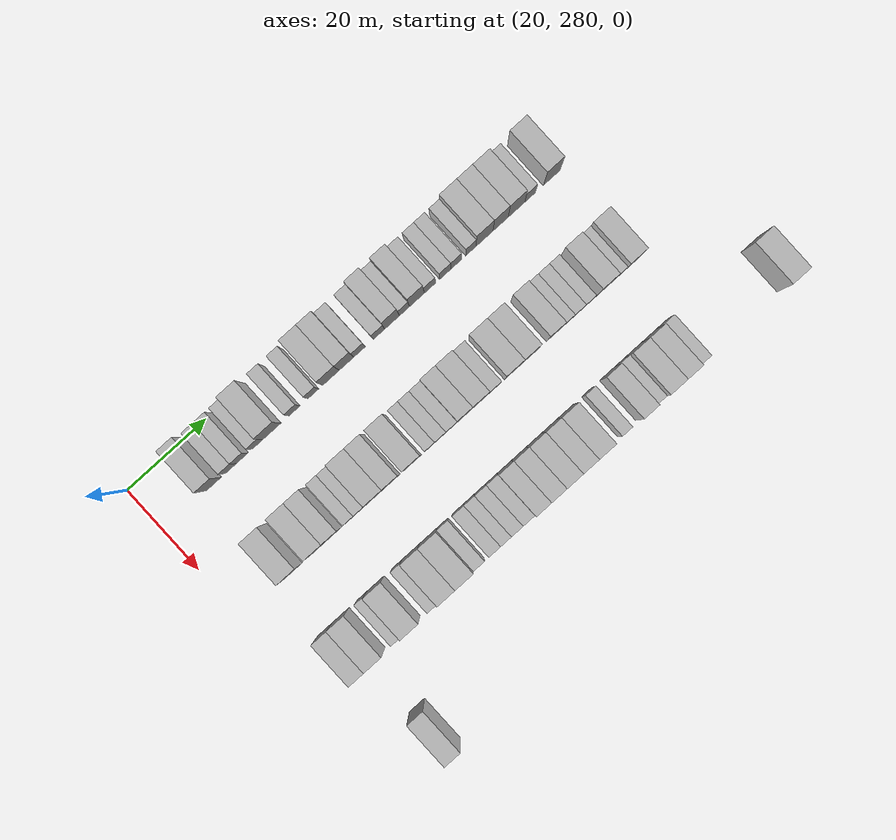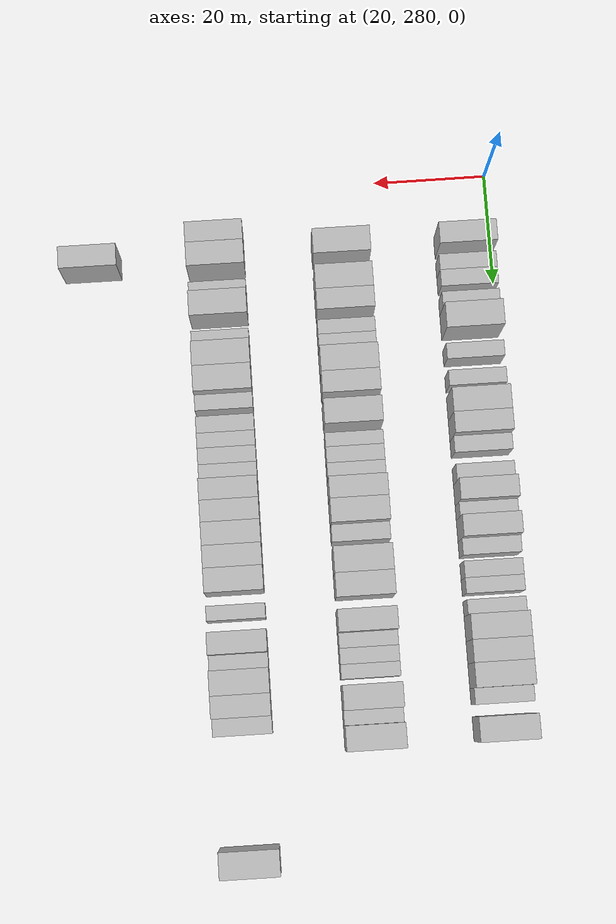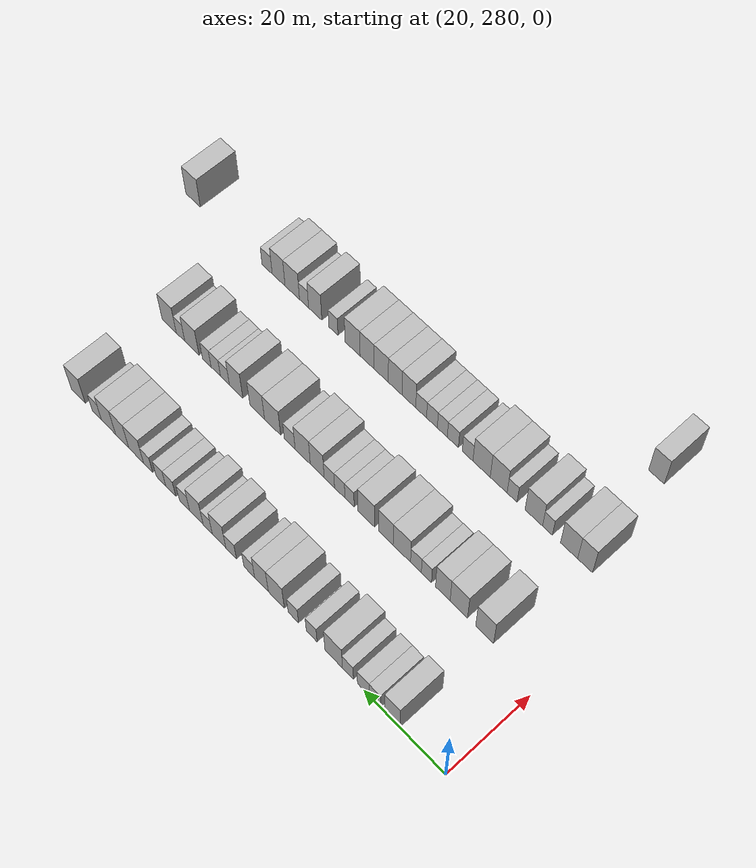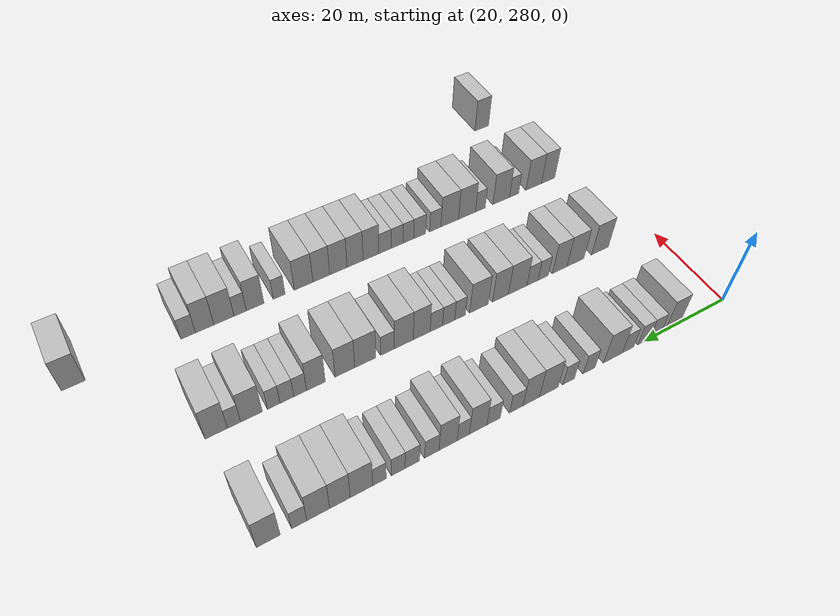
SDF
<sdf version="1.6">
 <world name="default">
  <model name="building_171">
   <static>1</static>
   <pose>25.0000 292.9441 0 0.000000 0.000000 0.000000</pose>
   <link name="link">
    <pose>0 0 4.50 0 0 0</pose>
    <collision name="collision"><geometry><box><size>10.0000 3.7758 9.0000</size></box></geometry></collision>
    <visual name="visual">
     <cast_shadows>0</cast_shadows>
     <geometry><box><size>10.0000 3.7758 9.0000</size></box></geometry>
     <material>
      <script>
       <uri>model://HANNAS_wall/materials/scripts</uri>
       <uri>model://HANNAS_wall/materials/textures</uri>
       <name>vrc/HANNAS_wall</name>
      </script>
     </material>
    </visual>
   </link>
  </model>
  <model name="building_172">
   <static>1</static>
   <pose>25.0000 297.2373 0 0.000000 0.000000 0.000000</pose>
   <link name="link">
    <pose>0 0 3.00 0 0 0</pose>
    <collision name="collision"><geometry><box><size>10.0000 2.8105 6.0000</size></box></geometry></collision>
    <visual name="visual">
     <cast_shadows>0</cast_shadows>
     <geometry><box><size>10.0000 2.8105 6.0000</size></box></geometry>
     <material>
      <script>
       <uri>model://HANNAS_wall/materials/scripts</uri>
       <uri>model://HANNAS_wall/materials/textures</uri>
       <name>vrc/HANNAS_wall</name>
      </script>
     </material>
    </visual>
   </link>
  </model>
  <model name="building_173">
   <static>1</static>
   <pose>25.0000 300.1265 0 0.000000 0.000000 0.000000</pose>
   <link name="link">
    <pose>0 0 3.00 0 0 0</pose>
    <collision name="collision"><geometry><box><size>10.0000 2.9680 6.0000</size></box></geometry></collision>
    <visual name="visual">
     <cast_shadows>0</cast_shadows>
     <geometry><box><size>10.0000 2.9680 6.0000</size></box></geometry>
     <material>
      <script>
       <uri>model://HANNAS_wall/materials/scripts</uri>
       <uri>model://HANNAS_wall/materials/textures</uri>
       <name>vrc/HANNAS_wall</name>
      </script>
     </material>
    </visual>
   </link>
  </model>
  <model name="building_174">
   <static>1</static>
   <pose>25.0000 303.9963 0 0.000000 0.000000 0.000000</pose>
   <link name="link">
    <pose>0 0 3.00 0 0 0</pose>
    <collision name="collision"><geometry><box><size>10.0000 2.7715 6.0000</size></box></geometry></collision>
    <visual name="visual">
     <cast_shadows>0</cast_shadows>
     <geometry><box><size>10.0000 2.7715 6.0000</size></box></geometry>
     <material>
      <script>
       <uri>model://HANNAS_wall/materials/scripts</uri>
       <uri>model://HANNAS_wall/materials/textures</uri>
       <name>vrc/HANNAS_wall</name>
      </script>
     </material>
    </visual>
   </link>
  </model>
  <model name="building_175">
   <static>1</static>
   <pose>25.0000 307.6136 0 0.000000 0.000000 0.000000</pose>
   <link name="link">
    <pose>0 0 4.50 0 0 0</pose>
    <collision name="collision"><geometry><box><size>10.0000 4.4632 9.0000</size></box></geometry></collision>
    <visual name="visual">
     <cast_shadows>0</cast_shadows>
     <geometry><box><size>10.0000 4.4632 9.0000</size></box></geometry>
     <material>
      <script>
       <uri>model://HANNAS_wall/materials/scripts</uri>
       <uri>model://HANNAS_wall/materials/textures</uri>
       <name>vrc/HANNAS_wall</name>
      </script>
     </material>
    </visual>
   </link>
  </model>
  <model name="building_176">
   <static>1</static>
   <pose>25.0000 313.2385 0 0.000000 0.000000 0.000000</pose>
   <link name="link">
    <pose>0 0 3.00 0 0 0</pose>
    <collision name="collision"><geometry><box><size>10.0000 2.7866 6.0000</size></box></geometry></collision>
    <visual name="visual">
     <cast_shadows>0</cast_shadows>
     <geometry><box><size>10.0000 2.7866 6.0000</size></box></geometry>
     <material>
      <script>
       <uri>model://HANNAS_wall/materials/scripts</uri>
       <uri>model://HANNAS_wall/materials/textures</uri>
       <name>vrc/HANNAS_wall</name>
      </script>
     </material>
    </visual>
   </link>
  </model>
  <model name="building_177">
   <static>1</static>
   <pose>25.0000 317.9877 0 0.000000 0.000000 0.000000</pose>
   <link name="link">
    <pose>0 0 3.00 0 0 0</pose>
    <collision name="collision"><geometry><box><size>10.0000 2.7118 6.0000</size></box></geometry></collision>
    <visual name="visual">
     <cast_shadows>0</cast_shadows>
     <geometry><box><size>10.0000 2.7118 6.0000</size></box></geometry>
     <material>
      <script>
       <uri>model://HANNAS_wall/materials/scripts</uri>
       <uri>model://HANNAS_wall/materials/textures</uri>
       <name>vrc/HANNAS_wall</name>
      </script>
     </material>
    </visual>
   </link>
  </model>
  <model name="building_178">
   <static>1</static>
   <pose>25.0000 322.4462 0 0.000000 0.000000 0.000000</pose>
   <link name="link">
    <pose>0 0 4.50 0 0 0</pose>
    <collision name="collision"><geometry><box><size>10.0000 4.2054 9.0000</size></box></geometry></collision>
    <visual name="visual">
     <cast_shadows>0</cast_shadows>
     <geometry><box><size>10.0000 4.2054 9.0000</size></box></geometry>
     <material>
      <script>
       <uri>model://HANNAS_wall/materials/scripts</uri>
       <uri>model://HANNAS_wall/materials/textures</uri>
       <name>vrc/HANNAS_wall</name>
      </script>
     </material>
    </visual>
   </link>
  </model>
  <model name="building_179">
   <static>1</static>
   <pose>25.0000 326.3733 0 0.000000 0.000000 0.000000</pose>
   <link name="link">
    <pose>0 0 4.50 0 0 0</pose>
    <collision name="collision"><geometry><box><size>10.0000 3.6488 9.0000</size></box></geometry></collision>
    <visual name="visual">
     <cast_shadows>0</cast_shadows>
     <geometry><box><size>10.0000 3.6488 9.0000</size></box></geometry>
     <material>
      <script>
       <uri>model://HANNAS_wall/materials/scripts</uri>
       <uri>model://HANNAS_wall/materials/textures</uri>
       <name>vrc/HANNAS_wall</name>
      </script>
     </material>
    </visual>
   </link>
  </model>
  <model name="building_180">
   <static>1</static>
   <pose>25.0000 329.6420 0 0.000000 0.000000 0.000000</pose>
   <link name="link">
    <pose>0 0 3.00 0 0 0</pose>
    <collision name="collision"><geometry><box><size>10.0000 2.8886 6.0000</size></box></geometry></collision>
    <visual name="visual">
     <cast_shadows>0</cast_shadows>
     <geometry><box><size>10.0000 2.8886 6.0000</size></box></geometry>
     <material>
      <script>
       <uri>model://HANNAS_wall/materials/scripts</uri>
       <uri>model://HANNAS_wall/materials/textures</uri>
       <name>vrc/HANNAS_wall</name>
      </script>
     </material>
    </visual>
   </link>
  </model>
  <model name="building_181">
   <static>1</static>
   <pose>25.0000 334.5203 0 0.000000 0.000000 0.000000</pose>
   <link name="link">
    <pose>0 0 3.00 0 0 0</pose>
    <collision name="collision"><geometry><box><size>10.0000 2.8680 6.0000</size></box></geometry></collision>
    <visual name="visual">
     <cast_shadows>0</cast_shadows>
     <geometry><box><size>10.0000 2.8680 6.0000</size></box></geometry>
     <material>
      <script>
       <uri>model://HANNAS_wall/materials/scripts</uri>
       <uri>model://HANNAS_wall/materials/textures</uri>
       <name>vrc/HANNAS_wall</name>
      </script>
     </material>
    </visual>
   </link>
  </model>
  <model name="building_182">
   <static>1</static>
   <pose>25.0000 337.7992 0 0.000000 0.000000 0.000000</pose>
   <link name="link">
    <pose>0 0 4.50 0 0 0</pose>
    <collision name="collision"><geometry><box><size>10.0000 3.6898 9.0000</size></box></geometry></collision>
    <visual name="visual">
     <cast_shadows>0</cast_shadows>
     <geometry><box><size>10.0000 3.6898 9.0000</size></box></geometry>
     <material>
      <script>
       <uri>model://HANNAS_wall/materials/scripts</uri>
       <uri>model://HANNAS_wall/materials/textures</uri>
       <name>vrc/HANNAS_wall</name>
      </script>
     </material>
    </visual>
   </link>
  </model>
  <model name="building_183">
   <static>1</static>
   <pose>25.0000 340.9057 0 0.000000 0.000000 0.000000</pose>
   <link name="link">
    <pose>0 0 3.00 0 0 0</pose>
    <collision name="collision"><geometry><box><size>10.0000 2.5232 6.0000</size></box></geometry></collision>
    <visual name="visual">
     <cast_shadows>0</cast_shadows>
     <geometry><box><size>10.0000 2.5232 6.0000</size></box></geometry>
     <material>
      <script>
       <uri>model://HANNAS_wall/materials/scripts</uri>
       <uri>model://HANNAS_wall/materials/textures</uri>
       <name>vrc/HANNAS_wall</name>
      </script>
     </material>
    </visual>
   </link>
  </model>
  <model name="building_184">
   <static>1</static>
   <pose>25.0000 344.0255 0 0.000000 0.000000 0.000000</pose>
   <link name="link">
    <pose>0 0 4.50 0 0 0</pose>
    <collision name="collision"><geometry><box><size>10.0000 3.7163 9.0000</size></box></geometry></collision>
    <visual name="visual">
     <cast_shadows>0</cast_shadows>
     <geometry><box><size>10.0000 3.7163 9.0000</size></box></geometry>
     <material>
      <script>
       <uri>model://HANNAS_wall/materials/scripts</uri>
       <uri>model://HANNAS_wall/materials/textures</uri>
       <name>vrc/HANNAS_wall</name>
      </script>
     </material>
    </visual>
   </link>
  </model>
  <model name="building_185">
   <static>1</static>
   <pose>25.0000 347.3264 0 0.000000 0.000000 0.000000</pose>
   <link name="link">
    <pose>0 0 3.00 0 0 0</pose>
    <collision name="collision"><geometry><box><size>10.0000 2.8855 6.0000</size></box></geometry></collision>
    <visual name="visual">
     <cast_shadows>0</cast_shadows>
     <geometry><box><size>10.0000 2.8855 6.0000</size></box></geometry>
     <material>
      <script>
       <uri>model://HANNAS_wall/materials/scripts</uri>
       <uri>model://HANNAS_wall/materials/textures</uri>
       <name>vrc/HANNAS_wall</name>
      </script>
     </material>
    </visual>
   </link>
  </model>
  <model name="building_186">
   <static>1</static>
   <pose>25.0000 351.1867 0 0.000000 0.000000 0.000000</pose>
   <link name="link">
    <pose>0 0 3.00 0 0 0</pose>
    <collision name="collision"><geometry><box><size>10.0000 2.8351 6.0000</size></box></geometry></collision>
    <visual name="visual">
     <cast_shadows>0</cast_shadows>
     <geometry><box><size>10.0000 2.8351 6.0000</size></box></geometry>
     <material>
      <script>
       <uri>model://HANNAS_wall/materials/scripts</uri>
       <uri>model://HANNAS_wall/materials/textures</uri>
       <name>vrc/HANNAS_wall</name>
      </script>
     </material>
    </visual>
   </link>
  </model>
  <model name="building_187">
   <static>1</static>
   <pose>25.0000 353.9510 0 0.000000 0.000000 0.000000</pose>
   <link name="link">
    <pose>0 0 3.00 0 0 0</pose>
    <collision name="collision"><geometry><box><size>10.0000 2.6936 6.0000</size></box></geometry></collision>
    <visual name="visual">
     <cast_shadows>0</cast_shadows>
     <geometry><box><size>10.0000 2.6936 6.0000</size></box></geometry>
     <material>
      <script>
       <uri>model://HANNAS_wall/materials/scripts</uri>
       <uri>model://HANNAS_wall/materials/textures</uri>
       <name>vrc/HANNAS_wall</name>
      </script>
     </material>
    </visual>
   </link>
  </model>
  <model name="building_188">
   <static>1</static>
   <pose>25.0000 357.5946 0 0.000000 0.000000 0.000000</pose>
   <link name="link">
    <pose>0 0 3.00 0 0 0</pose>
    <collision name="collision"><geometry><box><size>10.0000 2.5936 6.0000</size></box></geometry></collision>
    <visual name="visual">
     <cast_shadows>0</cast_shadows>
     <geometry><box><size>10.0000 2.5936 6.0000</size></box></geometry>
     <material>
      <script>
       <uri>model://HANNAS_wall/materials/scripts</uri>
       <uri>model://HANNAS_wall/materials/textures</uri>
       <name>vrc/HANNAS_wall</name>
      </script>
     </material>
    </visual>
   </link>
  </model>
  <model name="building_189">
   <static>1</static>
   <pose>25.0000 361.0147 0 0.000000 0.000000 0.000000</pose>
   <link name="link">
    <pose>0 0 4.50 0 0 0</pose>
    <collision name="collision"><geometry><box><size>10.0000 4.2465 9.0000</size></box></geometry></collision>
    <visual name="visual">
     <cast_shadows>0</cast_shadows>
     <geometry><box><size>10.0000 4.2465 9.0000</size></box></geometry>
     <material>
      <script>
       <uri>model://HANNAS_wall/materials/scripts</uri>
       <uri>model://HANNAS_wall/materials/textures</uri>
       <name>vrc/HANNAS_wall</name>
      </script>
     </material>
    </visual>
   </link>
  </model>
  <model name="building_190">
   <static>1</static>
   <pose>25.0000 365.0445 0 0.000000 0.000000 0.000000</pose>
   <link name="link">
    <pose>0 0 4.50 0 0 0</pose>
    <collision name="collision"><geometry><box><size>10.0000 3.8132 9.0000</size></box></geometry></collision>
    <visual name="visual">
     <cast_shadows>0</cast_shadows>
     <geometry><box><size>10.0000 3.8132 9.0000</size></box></geometry>
     <material>
      <script>
       <uri>model://HANNAS_wall/materials/scripts</uri>
       <uri>model://HANNAS_wall/materials/textures</uri>
       <name>vrc/HANNAS_wall</name>
      </script>
     </material>
    </visual>
   </link>
  </model>
  <model name="building_191">
   <static>1</static>
   <pose>25.0000 369.0265 0 0.000000 0.000000 0.000000</pose>
   <link name="link">
    <pose>0 0 4.50 0 0 0</pose>
    <collision name="collision"><geometry><box><size>10.0000 4.1508 9.0000</size></box></geometry></collision>
    <visual name="visual">
     <cast_shadows>0</cast_shadows>
     <geometry><box><size>10.0000 4.1508 9.0000</size></box></geometry>
     <material>
      <script>
       <uri>model://HANNAS_wall/materials/scripts</uri>
       <uri>model://HANNAS_wall/materials/textures</uri>
       <name>vrc/HANNAS_wall</name>
      </script>
     </material>
    </visual>
   </link>
  </model>
  <model name="building_192">
   <static>1</static>
   <pose>25.0000 372.4755 0 0.000000 0.000000 0.000000</pose>
   <link name="link">
    <pose>0 0 3.00 0 0 0</pose>
    <collision name="collision"><geometry><box><size>10.0000 2.7471 6.0000</size></box></geometry></collision>
    <visual name="visual">
     <cast_shadows>0</cast_shadows>
     <geometry><box><size>10.0000 2.7471 6.0000</size></box></geometry>
     <material>
      <script>
       <uri>model://HANNAS_wall/materials/scripts</uri>
       <uri>model://HANNAS_wall/materials/textures</uri>
       <name>vrc/HANNAS_wall</name>
      </script>
     </material>
    </visual>
   </link>
  </model>
  <model name="building_193">
   <static>1</static>
   <pose>25.0000 377.9416 0 0.000000 0.000000 0.000000</pose>
   <link name="link">
    <pose>0 0 4.50 0 0 0</pose>
    <collision name="collision"><geometry><box><size>10.0000 4.1852 9.0000</size></box></geometry></collision>
    <visual name="visual">
     <cast_shadows>0</cast_shadows>
     <geometry><box><size>10.0000 4.1852 9.0000</size></box></geometry>
     <material>
      <script>
       <uri>model://HANNAS_wall/materials/scripts</uri>
       <uri>model://HANNAS_wall/materials/textures</uri>
       <name>vrc/HANNAS_wall</name>
      </script>
     </material>
    </visual>
   </link>
  </model>
  <model name="building_362">
   <static>1</static>
   <pose>47.0000 293.0631 0 0.000000 0.000000 0.000000</pose>
   <link name="link">
    <pose>0 0 4.50 0 0 0</pose>
    <collision name="collision"><geometry><box><size>10.0000 4.4106 9.0000</size></box></geometry></collision>
    <visual name="visual">
     <cast_shadows>0</cast_shadows>
     <geometry><box><size>10.0000 4.4106 9.0000</size></box></geometry>
     <material>
      <script>
       <uri>model://HANNAS_wall/materials/scripts</uri>
       <uri>model://HANNAS_wall/materials/textures</uri>
       <name>vrc/HANNAS_wall</name>
      </script>
     </material>
    </visual>
   </link>
  </model>
  <model name="building_363">
   <static>1</static>
   <pose>47.0000 299.4350 0 0.000000 0.000000 0.000000</pose>
   <link name="link">
    <pose>0 0 4.50 0 0 0</pose>
    <collision name="collision"><geometry><box><size>10.0000 4.3331 9.0000</size></box></geometry></collision>
    <visual name="visual">
     <cast_shadows>0</cast_shadows>
     <geometry><box><size>10.0000 4.3331 9.0000</size></box></geometry>
     <material>
      <script>
       <uri>model://HANNAS_wall/materials/scripts</uri>
       <uri>model://HANNAS_wall/materials/textures</uri>
       <name>vrc/HANNAS_wall</name>
      </script>
     </material>
    </visual>
   </link>
  </model>
  <model name="building_364">
   <static>1</static>
   <pose>47.0000 303.4418 0 0.000000 0.000000 0.000000</pose>
   <link name="link">
    <pose>0 0 4.50 0 0 0</pose>
    <collision name="collision"><geometry><box><size>10.0000 3.6807 9.0000</size></box></geometry></collision>
    <visual name="visual">
     <cast_shadows>0</cast_shadows>
     <geometry><box><size>10.0000 3.6807 9.0000</size></box></geometry>
     <material>
      <script>
       <uri>model://HANNAS_wall/materials/scripts</uri>
       <uri>model://HANNAS_wall/materials/textures</uri>
       <name>vrc/HANNAS_wall</name>
      </script>
     </material>
    </visual>
   </link>
  </model>
  <model name="building_365">
   <static>1</static>
   <pose>47.0000 307.5707 0 0.000000 0.000000 0.000000</pose>
   <link name="link">
    <pose>0 0 3.00 0 0 0</pose>
    <collision name="collision"><geometry><box><size>10.0000 2.5772 6.0000</size></box></geometry></collision>
    <visual name="visual">
     <cast_shadows>0</cast_shadows>
     <geometry><box><size>10.0000 2.5772 6.0000</size></box></geometry>
     <material>
      <script>
       <uri>model://HANNAS_wall/materials/scripts</uri>
       <uri>model://HANNAS_wall/materials/textures</uri>
       <name>vrc/HANNAS_wall</name>
      </script>
     </material>
    </visual>
   </link>
  </model>
  <model name="building_366">
   <static>1</static>
   <pose>47.0000 310.2320 0 0.000000 0.000000 0.000000</pose>
   <link name="link">
    <pose>0 0 3.00 0 0 0</pose>
    <collision name="collision"><geometry><box><size>10.0000 2.7453 6.0000</size></box></geometry></collision>
    <visual name="visual">
     <cast_shadows>0</cast_shadows>
     <geometry><box><size>10.0000 2.7453 6.0000</size></box></geometry>
     <material>
      <script>
       <uri>model://HANNAS_wall/materials/scripts</uri>
       <uri>model://HANNAS_wall/materials/textures</uri>
       <name>vrc/HANNAS_wall</name>
      </script>
     </material>
    </visual>
   </link>
  </model>
  <model name="building_367">
   <static>1</static>
   <pose>47.0000 313.8483 0 0.000000 0.000000 0.000000</pose>
   <link name="link">
    <pose>0 0 4.50 0 0 0</pose>
    <collision name="collision"><geometry><box><size>10.0000 4.4874 9.0000</size></box></geometry></collision>
    <visual name="visual">
     <cast_shadows>0</cast_shadows>
     <geometry><box><size>10.0000 4.4874 9.0000</size></box></geometry>
     <material>
      <script>
       <uri>model://HANNAS_wall/materials/scripts</uri>
       <uri>model://HANNAS_wall/materials/textures</uri>
       <name>vrc/HANNAS_wall</name>
      </script>
     </material>
    </visual>
   </link>
  </model>
  <model name="building_368">
   <static>1</static>
   <pose>47.0000 317.9958 0 0.000000 0.000000 0.000000</pose>
   <link name="link">
    <pose>0 0 4.50 0 0 0</pose>
    <collision name="collision"><geometry><box><size>10.0000 3.8077 9.0000</size></box></geometry></collision>
    <visual name="visual">
     <cast_shadows>0</cast_shadows>
     <geometry><box><size>10.0000 3.8077 9.0000</size></box></geometry>
     <material>
      <script>
       <uri>model://HANNAS_wall/materials/scripts</uri>
       <uri>model://HANNAS_wall/materials/textures</uri>
       <name>vrc/HANNAS_wall</name>
      </script>
     </material>
    </visual>
   </link>
  </model>
  <model name="building_369">
   <static>1</static>
   <pose>47.0000 323.0871 0 0.000000 0.000000 0.000000</pose>
   <link name="link">
    <pose>0 0 4.50 0 0 0</pose>
    <collision name="collision"><geometry><box><size>10.0000 4.3749 9.0000</size></box></geometry></collision>
    <visual name="visual">
     <cast_shadows>0</cast_shadows>
     <geometry><box><size>10.0000 4.3749 9.0000</size></box></geometry>
     <material>
      <script>
       <uri>model://HANNAS_wall/materials/scripts</uri>
       <uri>model://HANNAS_wall/materials/textures</uri>
       <name>vrc/HANNAS_wall</name>
      </script>
     </material>
    </visual>
   </link>
  </model>
  <model name="building_370">
   <static>1</static>
   <pose>47.0000 327.4971 0 0.000000 0.000000 0.000000</pose>
   <link name="link">
    <pose>0 0 3.00 0 0 0</pose>
    <collision name="collision"><geometry><box><size>10.0000 2.4450 6.0000</size></box></geometry></collision>
    <visual name="visual">
     <cast_shadows>0</cast_shadows>
     <geometry><box><size>10.0000 2.4450 6.0000</size></box></geometry>
     <material>
      <script>
       <uri>model://HANNAS_wall/materials/scripts</uri>
       <uri>model://HANNAS_wall/materials/textures</uri>
       <name>vrc/HANNAS_wall</name>
      </script>
     </material>
    </visual>
   </link>
  </model>
  <model name="building_371">
   <static>1</static>
   <pose>47.0000 330.1136 0 0.000000 0.000000 0.000000</pose>
   <link name="link">
    <pose>0 0 3.00 0 0 0</pose>
    <collision name="collision"><geometry><box><size>10.0000 2.7879 6.0000</size></box></geometry></collision>
    <visual name="visual">
     <cast_shadows>0</cast_shadows>
     <geometry><box><size>10.0000 2.7879 6.0000</size></box></geometry>
     <material>
      <script>
       <uri>model://HANNAS_wall/materials/scripts</uri>
       <uri>model://HANNAS_wall/materials/textures</uri>
       <name>vrc/HANNAS_wall</name>
      </script>
     </material>
    </visual>
   </link>
  </model>
  <model name="building_372">
   <static>1</static>
   <pose>47.0000 332.9023 0 0.000000 0.000000 0.000000</pose>
   <link name="link">
    <pose>0 0 3.00 0 0 0</pose>
    <collision name="collision"><geometry><box><size>10.0000 2.7897 6.0000</size></box></geometry></collision>
    <visual name="visual">
     <cast_shadows>0</cast_shadows>
     <geometry><box><size>10.0000 2.7897 6.0000</size></box></geometry>
     <material>
      <script>
       <uri>model://HANNAS_wall/materials/scripts</uri>
       <uri>model://HANNAS_wall/materials/textures</uri>
       <name>vrc/HANNAS_wall</name>
      </script>
     </material>
    </visual>
   </link>
  </model>
  <model name="building_373">
   <static>1</static>
   <pose>47.0000 336.1678 0 0.000000 0.000000 0.000000</pose>
   <link name="link">
    <pose>0 0 4.50 0 0 0</pose>
    <collision name="collision"><geometry><box><size>10.0000 3.7412 9.0000</size></box></geometry></collision>
    <visual name="visual">
     <cast_shadows>0</cast_shadows>
     <geometry><box><size>10.0000 3.7412 9.0000</size></box></geometry>
     <material>
      <script>
       <uri>model://HANNAS_wall/materials/scripts</uri>
       <uri>model://HANNAS_wall/materials/textures</uri>
       <name>vrc/HANNAS_wall</name>
      </script>
     </material>
    </visual>
   </link>
  </model>
  <model name="building_374">
   <static>1</static>
   <pose>47.0000 340.1072 0 0.000000 0.000000 0.000000</pose>
   <link name="link">
    <pose>0 0 4.50 0 0 0</pose>
    <collision name="collision"><geometry><box><size>10.0000 4.1377 9.0000</size></box></geometry></collision>
    <visual name="visual">
     <cast_shadows>0</cast_shadows>
     <geometry><box><size>10.0000 4.1377 9.0000</size></box></geometry>
     <material>
      <script>
       <uri>model://HANNAS_wall/materials/scripts</uri>
       <uri>model://HANNAS_wall/materials/textures</uri>
       <name>vrc/HANNAS_wall</name>
      </script>
     </material>
    </visual>
   </link>
  </model>
  <model name="building_375">
   <static>1</static>
   <pose>47.0000 343.6704 0 0.000000 0.000000 0.000000</pose>
   <link name="link">
    <pose>0 0 3.00 0 0 0</pose>
    <collision name="collision"><geometry><box><size>10.0000 2.9887 6.0000</size></box></geometry></collision>
    <visual name="visual">
     <cast_shadows>0</cast_shadows>
     <geometry><box><size>10.0000 2.9887 6.0000</size></box></geometry>
     <material>
      <script>
       <uri>model://HANNAS_wall/materials/scripts</uri>
       <uri>model://HANNAS_wall/materials/textures</uri>
       <name>vrc/HANNAS_wall</name>
      </script>
     </material>
    </visual>
   </link>
  </model>
  <model name="building_376">
   <static>1</static>
   <pose>47.0000 348.3986 0 0.000000 0.000000 0.000000</pose>
   <link name="link">
    <pose>0 0 4.50 0 0 0</pose>
    <collision name="collision"><geometry><box><size>10.0000 4.4678 9.0000</size></box></geometry></collision>
    <visual name="visual">
     <cast_shadows>0</cast_shadows>
     <geometry><box><size>10.0000 4.4678 9.0000</size></box></geometry>
     <material>
      <script>
       <uri>model://HANNAS_wall/materials/scripts</uri>
       <uri>model://HANNAS_wall/materials/textures</uri>
       <name>vrc/HANNAS_wall</name>
      </script>
     </material>
    </visual>
   </link>
  </model>
  <model name="building_377">
   <static>1</static>
   <pose>47.0000 352.6826 0 0.000000 0.000000 0.000000</pose>
   <link name="link">
    <pose>0 0 4.50 0 0 0</pose>
    <collision name="collision"><geometry><box><size>10.0000 4.1001 9.0000</size></box></geometry></collision>
    <visual name="visual">
     <cast_shadows>0</cast_shadows>
     <geometry><box><size>10.0000 4.1001 9.0000</size></box></geometry>
     <material>
      <script>
       <uri>model://HANNAS_wall/materials/scripts</uri>
       <uri>model://HANNAS_wall/materials/textures</uri>
       <name>vrc/HANNAS_wall</name>
      </script>
     </material>
    </visual>
   </link>
  </model>
  <model name="building_378">
   <static>1</static>
   <pose>47.0000 358.6450 0 0.000000 0.000000 0.000000</pose>
   <link name="link">
    <pose>0 0 4.50 0 0 0</pose>
    <collision name="collision"><geometry><box><size>10.0000 3.8249 9.0000</size></box></geometry></collision>
    <visual name="visual">
     <cast_shadows>0</cast_shadows>
     <geometry><box><size>10.0000 3.8249 9.0000</size></box></geometry>
     <material>
      <script>
       <uri>model://HANNAS_wall/materials/scripts</uri>
       <uri>model://HANNAS_wall/materials/textures</uri>
       <name>vrc/HANNAS_wall</name>
      </script>
     </material>
    </visual>
   </link>
  </model>
  <model name="building_379">
   <static>1</static>
   <pose>47.0000 361.8298 0 0.000000 0.000000 0.000000</pose>
   <link name="link">
    <pose>0 0 3.00 0 0 0</pose>
    <collision name="collision"><geometry><box><size>10.0000 2.5446 6.0000</size></box></geometry></collision>
    <visual name="visual">
     <cast_shadows>0</cast_shadows>
     <geometry><box><size>10.0000 2.5446 6.0000</size></box></geometry>
     <material>
      <script>
       <uri>model://HANNAS_wall/materials/scripts</uri>
       <uri>model://HANNAS_wall/materials/textures</uri>
       <name>vrc/HANNAS_wall</name>
      </script>
     </material>
    </visual>
   </link>
  </model>
  <model name="building_380">
   <static>1</static>
   <pose>47.0000 364.4578 0 0.000000 0.000000 0.000000</pose>
   <link name="link">
    <pose>0 0 3.00 0 0 0</pose>
    <collision name="collision"><geometry><box><size>10.0000 2.7115 6.0000</size></box></geometry></collision>
    <visual name="visual">
     <cast_shadows>0</cast_shadows>
     <geometry><box><size>10.0000 2.7115 6.0000</size></box></geometry>
     <material>
      <script>
       <uri>model://HANNAS_wall/materials/scripts</uri>
       <uri>model://HANNAS_wall/materials/textures</uri>
       <name>vrc/HANNAS_wall</name>
      </script>
     </material>
    </visual>
   </link>
  </model>
  <model name="building_381">
   <static>1</static>
   <pose>47.0000 367.0527 0 0.000000 0.000000 0.000000</pose>
   <link name="link">
    <pose>0 0 3.00 0 0 0</pose>
    <collision name="collision"><geometry><box><size>10.0000 2.4782 6.0000</size></box></geometry></collision>
    <visual name="visual">
     <cast_shadows>0</cast_shadows>
     <geometry><box><size>10.0000 2.4782 6.0000</size></box></geometry>
     <material>
      <script>
       <uri>model://HANNAS_wall/materials/scripts</uri>
       <uri>model://HANNAS_wall/materials/textures</uri>
       <name>vrc/HANNAS_wall</name>
      </script>
     </material>
    </visual>
   </link>
  </model>
  <model name="building_382">
   <static>1</static>
   <pose>47.0000 371.3713 0 0.000000 0.000000 0.000000</pose>
   <link name="link">
    <pose>0 0 4.50 0 0 0</pose>
    <collision name="collision"><geometry><box><size>10.0000 4.1591 9.0000</size></box></geometry></collision>
    <visual name="visual">
     <cast_shadows>0</cast_shadows>
     <geometry><box><size>10.0000 4.1591 9.0000</size></box></geometry>
     <material>
      <script>
       <uri>model://HANNAS_wall/materials/scripts</uri>
       <uri>model://HANNAS_wall/materials/textures</uri>
       <name>vrc/HANNAS_wall</name>
      </script>
     </material>
    </visual>
   </link>
  </model>
  <model name="building_383">
   <static>1</static>
   <pose>47.0000 374.6992 0 0.000000 0.000000 0.000000</pose>
   <link name="link">
    <pose>0 0 3.00 0 0 0</pose>
    <collision name="collision"><geometry><box><size>10.0000 2.4968 6.0000</size></box></geometry></collision>
    <visual name="visual">
     <cast_shadows>0</cast_shadows>
     <geometry><box><size>10.0000 2.4968 6.0000</size></box></geometry>
     <material>
      <script>
       <uri>model://HANNAS_wall/materials/scripts</uri>
       <uri>model://HANNAS_wall/materials/textures</uri>
       <name>vrc/HANNAS_wall</name>
      </script>
     </material>
    </visual>
   </link>
  </model>
  <model name="building_384">
   <static>1</static>
   <pose>47.0000 378.0523 0 0.000000 0.000000 0.000000</pose>
   <link name="link">
    <pose>0 0 4.50 0 0 0</pose>
    <collision name="collision"><geometry><box><size>10.0000 4.2092 9.0000</size></box></geometry></collision>
    <visual name="visual">
     <cast_shadows>0</cast_shadows>
     <geometry><box><size>10.0000 4.2092 9.0000</size></box></geometry>
     <material>
      <script>
       <uri>model://HANNAS_wall/materials/scripts</uri>
       <uri>model://HANNAS_wall/materials/textures</uri>
       <name>vrc/HANNAS_wall</name>
      </script>
     </material>
    </visual>
   </link>
  </model>
  <model name="building_543">
   <static>1</static>
   <pose>69.0000 290.0946 0 0.000000 0.000000 0.000000</pose>
   <link name="link">
    <pose>0 0 4.50 0 0 0</pose>
    <collision name="collision"><geometry><box><size>10.0000 3.6411 9.0000</size></box></geometry></collision>
    <visual name="visual">
     <cast_shadows>0</cast_shadows>
     <geometry><box><size>10.0000 3.6411 9.0000</size></box></geometry>
     <material>
      <script>
       <uri>model://HANNAS_wall/materials/scripts</uri>
       <uri>model://HANNAS_wall/materials/textures</uri>
       <name>vrc/HANNAS_wall</name>
      </script>
     </material>
    </visual>
   </link>
  </model>
  <model name="building_544">
   <static>1</static>
   <pose>69.0000 294.0252 0 0.000000 0.000000 0.000000</pose>
   <link name="link">
    <pose>0 0 4.50 0 0 0</pose>
    <collision name="collision"><geometry><box><size>10.0000 4.2200 9.0000</size></box></geometry></collision>
    <visual name="visual">
     <cast_shadows>0</cast_shadows>
     <geometry><box><size>10.0000 4.2200 9.0000</size></box></geometry>
     <material>
      <script>
       <uri>model://HANNAS_wall/materials/scripts</uri>
       <uri>model://HANNAS_wall/materials/textures</uri>
       <name>vrc/HANNAS_wall</name>
      </script>
     </material>
    </visual>
   </link>
  </model>
  <model name="building_545">
   <static>1</static>
   <pose>69.0000 299.3609 0 0.000000 0.000000 0.000000</pose>
   <link name="link">
    <pose>0 0 3.00 0 0 0</pose>
    <collision name="collision"><geometry><box><size>10.0000 2.4515 6.0000</size></box></geometry></collision>
    <visual name="visual">
     <cast_shadows>0</cast_shadows>
     <geometry><box><size>10.0000 2.4515 6.0000</size></box></geometry>
     <material>
      <script>
       <uri>model://HANNAS_wall/materials/scripts</uri>
       <uri>model://HANNAS_wall/materials/textures</uri>
       <name>vrc/HANNAS_wall</name>
      </script>
     </material>
    </visual>
   </link>
  </model>
  <model name="building_546">
   <static>1</static>
   <pose>69.0000 302.7841 0 0.000000 0.000000 0.000000</pose>
   <link name="link">
    <pose>0 0 4.50 0 0 0</pose>
    <collision name="collision"><geometry><box><size>10.0000 4.3949 9.0000</size></box></geometry></collision>
    <visual name="visual">
     <cast_shadows>0</cast_shadows>
     <geometry><box><size>10.0000 4.3949 9.0000</size></box></geometry>
     <material>
      <script>
       <uri>model://HANNAS_wall/materials/scripts</uri>
       <uri>model://HANNAS_wall/materials/textures</uri>
       <name>vrc/HANNAS_wall</name>
      </script>
     </material>
    </visual>
   </link>
  </model>
  <model name="building_547">
   <static>1</static>
   <pose>69.0000 308.2421 0 0.000000 0.000000 0.000000</pose>
   <link name="link">
    <pose>0 0 3.00 0 0 0</pose>
    <collision name="collision"><geometry><box><size>10.0000 2.5212 6.0000</size></box></geometry></collision>
    <visual name="visual">
     <cast_shadows>0</cast_shadows>
     <geometry><box><size>10.0000 2.5212 6.0000</size></box></geometry>
     <material>
      <script>
       <uri>model://HANNAS_wall/materials/scripts</uri>
       <uri>model://HANNAS_wall/materials/textures</uri>
       <name>vrc/HANNAS_wall</name>
      </script>
     </material>
    </visual>
   </link>
  </model>
  <model name="building_548">
   <static>1</static>
   <pose>69.0000 311.6580 0 0.000000 0.000000 0.000000</pose>
   <link name="link">
    <pose>0 0 4.50 0 0 0</pose>
    <collision name="collision"><geometry><box><size>10.0000 4.3106 9.0000</size></box></geometry></collision>
    <visual name="visual">
     <cast_shadows>0</cast_shadows>
     <geometry><box><size>10.0000 4.3106 9.0000</size></box></geometry>
     <material>
      <script>
       <uri>model://HANNAS_wall/materials/scripts</uri>
       <uri>model://HANNAS_wall/materials/textures</uri>
       <name>vrc/HANNAS_wall</name>
      </script>
     </material>
    </visual>
   </link>
  </model>
  <model name="building_549">
   <static>1</static>
   <pose>69.0000 316.0462 0 0.000000 0.000000 0.000000</pose>
   <link name="link">
    <pose>0 0 4.50 0 0 0</pose>
    <collision name="collision"><geometry><box><size>10.0000 4.4658 9.0000</size></box></geometry></collision>
    <visual name="visual">
     <cast_shadows>0</cast_shadows>
     <geometry><box><size>10.0000 4.4658 9.0000</size></box></geometry>
     <material>
      <script>
       <uri>model://HANNAS_wall/materials/scripts</uri>
       <uri>model://HANNAS_wall/materials/textures</uri>
       <name>vrc/HANNAS_wall</name>
      </script>
     </material>
    </visual>
   </link>
  </model>
  <model name="building_550">
   <static>1</static>
   <pose>69.0000 319.6676 0 0.000000 0.000000 0.000000</pose>
   <link name="link">
    <pose>0 0 3.00 0 0 0</pose>
    <collision name="collision"><geometry><box><size>10.0000 2.7772 6.0000</size></box></geometry></collision>
    <visual name="visual">
     <cast_shadows>0</cast_shadows>
     <geometry><box><size>10.0000 2.7772 6.0000</size></box></geometry>
     <material>
      <script>
       <uri>model://HANNAS_wall/materials/scripts</uri>
       <uri>model://HANNAS_wall/materials/textures</uri>
       <name>vrc/HANNAS_wall</name>
      </script>
     </material>
    </visual>
   </link>
  </model>
  <model name="building_551">
   <static>1</static>
   <pose>69.0000 323.5153 0 0.000000 0.000000 0.000000</pose>
   <link name="link">
    <pose>0 0 3.00 0 0 0</pose>
    <collision name="collision"><geometry><box><size>10.0000 2.9181 6.0000</size></box></geometry></collision>
    <visual name="visual">
     <cast_shadows>0</cast_shadows>
     <geometry><box><size>10.0000 2.9181 6.0000</size></box></geometry>
     <material>
      <script>
       <uri>model://HANNAS_wall/materials/scripts</uri>
       <uri>model://HANNAS_wall/materials/textures</uri>
       <name>vrc/HANNAS_wall</name>
      </script>
     </material>
    </visual>
   </link>
  </model>
  <model name="building_552">
   <static>1</static>
   <pose>69.0000 326.2855 0 0.000000 0.000000 0.000000</pose>
   <link name="link">
    <pose>0 0 3.00 0 0 0</pose>
    <collision name="collision"><geometry><box><size>10.0000 2.6225 6.0000</size></box></geometry></collision>
    <visual name="visual">
     <cast_shadows>0</cast_shadows>
     <geometry><box><size>10.0000 2.6225 6.0000</size></box></geometry>
     <material>
      <script>
       <uri>model://HANNAS_wall/materials/scripts</uri>
       <uri>model://HANNAS_wall/materials/textures</uri>
       <name>vrc/HANNAS_wall</name>
      </script>
     </material>
    </visual>
   </link>
  </model>
  <model name="building_553">
   <static>1</static>
   <pose>69.0000 329.0267 0 0.000000 0.000000 0.000000</pose>
   <link name="link">
    <pose>0 0 3.00 0 0 0</pose>
    <collision name="collision"><geometry><box><size>10.0000 2.8599 6.0000</size></box></geometry></collision>
    <visual name="visual">
     <cast_shadows>0</cast_shadows>
     <geometry><box><size>10.0000 2.8599 6.0000</size></box></geometry>
     <material>
      <script>
       <uri>model://HANNAS_wall/materials/scripts</uri>
       <uri>model://HANNAS_wall/materials/textures</uri>
       <name>vrc/HANNAS_wall</name>
      </script>
     </material>
    </visual>
   </link>
  </model>
  <model name="building_554">
   <static>1</static>
   <pose>69.0000 331.8982 0 0.000000 0.000000 0.000000</pose>
   <link name="link">
    <pose>0 0 3.00 0 0 0</pose>
    <collision name="collision"><geometry><box><size>10.0000 2.8829 6.0000</size></box></geometry></collision>
    <visual name="visual">
     <cast_shadows>0</cast_shadows>
     <geometry><box><size>10.0000 2.8829 6.0000</size></box></geometry>
     <material>
      <script>
       <uri>model://HANNAS_wall/materials/scripts</uri>
       <uri>model://HANNAS_wall/materials/textures</uri>
       <name>vrc/HANNAS_wall</name>
      </script>
     </material>
    </visual>
   </link>
  </model>
  <model name="building_555">
   <static>1</static>
   <pose>69.0000 335.1855 0 0.000000 0.000000 0.000000</pose>
   <link name="link">
    <pose>0 0 4.50 0 0 0</pose>
    <collision name="collision"><geometry><box><size>10.0000 3.6919 9.0000</size></box></geometry></collision>
    <visual name="visual">
     <cast_shadows>0</cast_shadows>
     <geometry><box><size>10.0000 3.6919 9.0000</size></box></geometry>
     <material>
      <script>
       <uri>model://HANNAS_wall/materials/scripts</uri>
       <uri>model://HANNAS_wall/materials/textures</uri>
       <name>vrc/HANNAS_wall</name>
      </script>
     </material>
    </visual>
   </link>
  </model>
  <model name="building_556">
   <static>1</static>
   <pose>69.0000 338.8914 0 0.000000 0.000000 0.000000</pose>
   <link name="link">
    <pose>0 0 4.50 0 0 0</pose>
    <collision name="collision"><geometry><box><size>10.0000 3.7199 9.0000</size></box></geometry></collision>
    <visual name="visual">
     <cast_shadows>0</cast_shadows>
     <geometry><box><size>10.0000 3.7199 9.0000</size></box></geometry>
     <material>
      <script>
       <uri>model://HANNAS_wall/materials/scripts</uri>
       <uri>model://HANNAS_wall/materials/textures</uri>
       <name>vrc/HANNAS_wall</name>
      </script>
     </material>
    </visual>
   </link>
  </model>
  <model name="building_557">
   <static>1</static>
   <pose>69.0000 342.7244 0 0.000000 0.000000 0.000000</pose>
   <link name="link">
    <pose>0 0 4.50 0 0 0</pose>
    <collision name="collision"><geometry><box><size>10.0000 3.9460 9.0000</size></box></geometry></collision>
    <visual name="visual">
     <cast_shadows>0</cast_shadows>
     <geometry><box><size>10.0000 3.9460 9.0000</size></box></geometry>
     <material>
      <script>
       <uri>model://HANNAS_wall/materials/scripts</uri>
       <uri>model://HANNAS_wall/materials/textures</uri>
       <name>vrc/HANNAS_wall</name>
      </script>
     </material>
    </visual>
   </link>
  </model>
  <model name="building_558">
   <static>1</static>
   <pose>69.0000 346.6006 0 0.000000 0.000000 0.000000</pose>
   <link name="link">
    <pose>0 0 4.50 0 0 0</pose>
    <collision name="collision"><geometry><box><size>10.0000 3.8063 9.0000</size></box></geometry></collision>
    <visual name="visual">
     <cast_shadows>0</cast_shadows>
     <geometry><box><size>10.0000 3.8063 9.0000</size></box></geometry>
     <material>
      <script>
       <uri>model://HANNAS_wall/materials/scripts</uri>
       <uri>model://HANNAS_wall/materials/textures</uri>
       <name>vrc/HANNAS_wall</name>
      </script>
     </material>
    </visual>
   </link>
  </model>
  <model name="building_559">
   <static>1</static>
   <pose>69.0000 350.5803 0 0.000000 0.000000 0.000000</pose>
   <link name="link">
    <pose>0 0 4.50 0 0 0</pose>
    <collision name="collision"><geometry><box><size>10.0000 4.1530 9.0000</size></box></geometry></collision>
    <visual name="visual">
     <cast_shadows>0</cast_shadows>
     <geometry><box><size>10.0000 4.1530 9.0000</size></box></geometry>
     <material>
      <script>
       <uri>model://HANNAS_wall/materials/scripts</uri>
       <uri>model://HANNAS_wall/materials/textures</uri>
       <name>vrc/HANNAS_wall</name>
      </script>
     </material>
    </visual>
   </link>
  </model>
  <model name="building_560">
   <static>1</static>
   <pose>69.0000 355.9327 0 0.000000 0.000000 0.000000</pose>
   <link name="link">
    <pose>0 0 3.00 0 0 0</pose>
    <collision name="collision"><geometry><box><size>10.0000 2.5517 6.0000</size></box></geometry></collision>
    <visual name="visual">
     <cast_shadows>0</cast_shadows>
     <geometry><box><size>10.0000 2.5517 6.0000</size></box></geometry>
     <material>
      <script>
       <uri>model://HANNAS_wall/materials/scripts</uri>
       <uri>model://HANNAS_wall/materials/textures</uri>
       <name>vrc/HANNAS_wall</name>
      </script>
     </material>
    </visual>
   </link>
  </model>
  <model name="building_561">
   <static>1</static>
   <pose>69.0000 361.0933 0 0.000000 0.000000 0.000000</pose>
   <link name="link">
    <pose>0 0 4.50 0 0 0</pose>
    <collision name="collision"><geometry><box><size>10.0000 3.7696 9.0000</size></box></geometry></collision>
    <visual name="visual">
     <cast_shadows>0</cast_shadows>
     <geometry><box><size>10.0000 3.7696 9.0000</size></box></geometry>
     <material>
      <script>
       <uri>model://HANNAS_wall/materials/scripts</uri>
       <uri>model://HANNAS_wall/materials/textures</uri>
       <name>vrc/HANNAS_wall</name>
      </script>
     </material>
    </visual>
   </link>
  </model>
  <model name="building_562">
   <static>1</static>
   <pose>69.0000 364.2766 0 0.000000 0.000000 0.000000</pose>
   <link name="link">
    <pose>0 0 3.00 0 0 0</pose>
    <collision name="collision"><geometry><box><size>10.0000 2.5969 6.0000</size></box></geometry></collision>
    <visual name="visual">
     <cast_shadows>0</cast_shadows>
     <geometry><box><size>10.0000 2.5969 6.0000</size></box></geometry>
     <material>
      <script>
       <uri>model://HANNAS_wall/materials/scripts</uri>
       <uri>model://HANNAS_wall/materials/textures</uri>
       <name>vrc/HANNAS_wall</name>
      </script>
     </material>
    </visual>
   </link>
  </model>
  <model name="building_563">
   <static>1</static>
   <pose>69.0000 367.6575 0 0.000000 0.000000 0.000000</pose>
   <link name="link">
    <pose>0 0 4.50 0 0 0</pose>
    <collision name="collision"><geometry><box><size>10.0000 4.1650 9.0000</size></box></geometry></collision>
    <visual name="visual">
     <cast_shadows>0</cast_shadows>
     <geometry><box><size>10.0000 4.1650 9.0000</size></box></geometry>
     <material>
      <script>
       <uri>model://HANNAS_wall/materials/scripts</uri>
       <uri>model://HANNAS_wall/materials/textures</uri>
       <name>vrc/HANNAS_wall</name>
      </script>
     </material>
    </visual>
   </link>
  </model>
  <model name="building_564">
   <static>1</static>
   <pose>69.0000 371.6108 0 0.000000 0.000000 0.000000</pose>
   <link name="link">
    <pose>0 0 4.50 0 0 0</pose>
    <collision name="collision"><geometry><box><size>10.0000 3.7415 9.0000</size></box></geometry></collision>
    <visual name="visual">
     <cast_shadows>0</cast_shadows>
     <geometry><box><size>10.0000 3.7415 9.0000</size></box></geometry>
     <material>
      <script>
       <uri>model://HANNAS_wall/materials/scripts</uri>
       <uri>model://HANNAS_wall/materials/textures</uri>
       <name>vrc/HANNAS_wall</name>
      </script>
     </material>
    </visual>
   </link>
  </model>
  <model name="building_565">
   <static>1</static>
   <pose>69.0000 374.9658 0 0.000000 0.000000 0.000000</pose>
   <link name="link">
    <pose>0 0 3.00 0 0 0</pose>
    <collision name="collision"><geometry><box><size>10.0000 2.9686 6.0000</size></box></geometry></collision>
    <visual name="visual">
     <cast_shadows>0</cast_shadows>
     <geometry><box><size>10.0000 2.9686 6.0000</size></box></geometry>
     <material>
      <script>
       <uri>model://HANNAS_wall/materials/scripts</uri>
       <uri>model://HANNAS_wall/materials/textures</uri>
       <name>vrc/HANNAS_wall</name>
      </script>
     </material>
    </visual>
   </link>
  </model>
  <model name="building_566">
   <static>1</static>
   <pose>69.0000 397.1081 0 0.000000 0.000000 0.000000</pose>
   <link name="link">
    <pose>0 0 4.50 0 0 0</pose>
    <collision name="collision"><geometry><box><size>10.0000 4.4386 9.0000</size></box></geometry></collision>
    <visual name="visual">
     <cast_shadows>0</cast_shadows>
     <geometry><box><size>10.0000 4.4386 9.0000</size></box></geometry>
     <material>
      <script>
       <uri>model://HANNAS_wall/materials/scripts</uri>
       <uri>model://HANNAS_wall/materials/textures</uri>
       <name>vrc/HANNAS_wall</name>
      </script>
     </material>
    </visual>
   </link>
  </model>
  <model name="building_733">
   <static>1</static>
   <pose>91.0000 293.2802 0 0.000000 0.000000 0.000000</pose>
   <link name="link">
    <pose>0 0 4.50 0 0 0</pose>
    <collision name="collision"><geometry><box><size>10.0000 3.8695 9.0000</size></box></geometry></collision>
    <visual name="visual">
     <cast_shadows>0</cast_shadows>
     <geometry><box><size>10.0000 3.8695 9.0000</size></box></geometry>
     <material>
      <script>
       <uri>model://HANNAS_wall/materials/scripts</uri>
       <uri>model://HANNAS_wall/materials/textures</uri>
       <name>vrc/HANNAS_wall</name>
      </script>
     </material>
    </visual>
   </link>
  </model>
 </world>
</sdf>
